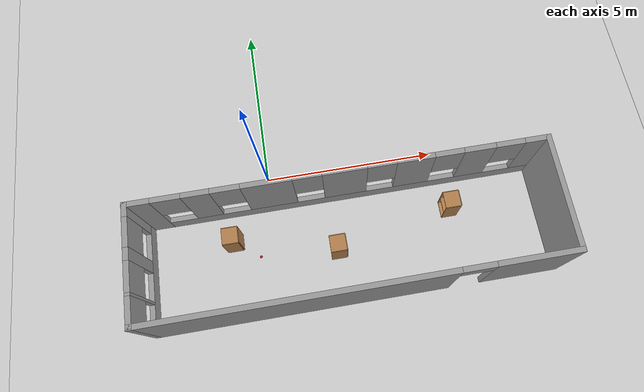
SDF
<sdf version="1.7">
 <world name="default">
  <light name="sun" type="directional">
   <pose>0 0 10 0 -0 0</pose>
   <diffuse>0.8 0.8 0.8 1</diffuse>
   <specular>0.2 0.2 0.2 1</specular>
   <attenuation>
    <range>1000</range>
    <constant>0.9</constant>
    <linear>0.01</linear>
    <quadratic>0.001</quadratic>
   </attenuation>
   <direction>-0.5 0.1 -0.9</direction>
   <spot><inner_angle>0</inner_angle><outer_angle>0</outer_angle><falloff>0</falloff></spot>
  </light>
  <model name="ground_plane">
   <static>1</static>
   <link name="link">
    <collision name="collision">
     <geometry><plane><normal>0 0 1</normal><size>100 100</size></plane></geometry>
     <surface><friction><ode><mu>100</mu><mu2>50</mu2></ode></friction></surface>
    </collision>
    <visual name="visual">
     <cast_shadows>0</cast_shadows>
     <geometry><plane><normal>0 0 1</normal><size>100 100</size></plane></geometry>
     <material>
      <script><uri>file://media/materials/scripts/gazebo.material</uri><name>Gazebo/Grey</name></script>
     </material>
    </visual>
   </link>
  </model>
  <gravity>0 0 -9.8</gravity>
  <magnetic_field>6e-06 2.3e-05 -4.2e-05</magnetic_field>
  <atmosphere type="adiabatic"/>
  <physics type="ode">
   <max_step_size>0.001</max_step_size>
   <real_time_factor>1</real_time_factor>
   <real_time_update_rate>1000</real_time_update_rate>
  </physics>
  <scene><ambient>0.4 0.4 0.4 1</ambient><background>0.7 0.7 0.7 1</background><shadows>1</shadows></scene>
  <audio><device>default</device></audio>
  <spherical_coordinates>
   <surface_model>EARTH_WGS84</surface_model>
   <latitude_deg>0</latitude_deg>
   <longitude_deg>0</longitude_deg>
   <elevation>0</elevation>
   <heading_deg>0</heading_deg>
  </spherical_coordinates>
  <model name="walls_new_room">
   <pose>2.12168 -1.73237 0 0 -0 0</pose>
   <link name="Wall_1">
    <collision name="Wall_1_Collision">
     <geometry><box><size>3.25 0.15 2.5</size></box></geometry>
     <pose>0 0 1.25 0 -0 0</pose>
    </collision>
    <visual name="Wall_1_Visual">
     <pose>0 0 1.25 0 -0 0</pose>
     <geometry><box><size>3.25 0.15 2.5</size></box></geometry>
     <material>
      <script><uri>file://media/materials/scripts/gazebo.material</uri><name>Gazebo/Grey</name></script>
      <ambient>1 1 1 1</ambient>
     </material>
     <meta><layer>0</layer></meta>
    </visual>
    <pose>5.675 -0.7375 0 0 -0 -1.5708</pose>
   </link>
   <link name="Wall_2">
    <pose>0 -2.2875 0 0 -0 3.14159</pose>
    <visual name="Wall_2_Visual_0">
     <pose>-4.6075 0 1.25 0 -0 0</pose>
     <geometry><box><size>2.285 0.15 2.5</size></box></geometry>
     <material>
      <script><uri>file://media/materials/scripts/gazebo.material</uri><name>Gazebo/Grey</name></script>
      <ambient>1 1 1 1</ambient>
     </material>
     <meta><layer>0</layer></meta>
    </visual>
    <collision name="Wall_2_Collision_0">
     <geometry><box><size>2.285 0.15 2.5</size></box></geometry>
     <pose>-4.6075 0 1.25 0 -0 0</pose>
    </collision>
    <visual name="Wall_2_Visual_1">
     <pose>1.5925 0 1.25 0 -0 0</pose>
     <geometry><box><size>8.315 0.15 2.5</size></box></geometry>
     <material>
      <script><uri>file://media/materials/scripts/gazebo.material</uri><name>Gazebo/Grey</name></script>
      <ambient>1 1 1 1</ambient>
     </material>
     <meta><layer>0</layer></meta>
    </visual>
    <collision name="Wall_2_Collision_1">
     <geometry><box><size>8.315 0.15 2.5</size></box></geometry>
     <pose>1.5925 0 1.25 0 -0 0</pose>
    </collision>
    <visual name="Wall_2_Visual_2">
     <pose>-3.015 0 2.25 0 -0 0</pose>
     <geometry><box><size>0.9 0.15 0.5</size></box></geometry>
     <material>
      <script><uri>file://media/materials/scripts/gazebo.material</uri><name>Gazebo/Grey</name></script>
      <ambient>1 1 1 1</ambient>
     </material>
     <meta><layer>0</layer></meta>
    </visual>
    <collision name="Wall_2_Collision_2">
     <geometry><box><size>0.9 0.15 0.5</size></box></geometry>
     <pose>-3.015 0 2.25 0 -0 0</pose>
    </collision>
   </link>
   <link name="Wall_3">
    <pose>-5.675 -0.7375 0 0 -0 1.5708</pose>
    <visual name="Wall_3_Visual_0">
     <pose>-1.6075 0 1.25 0 -0 0</pose>
     <geometry><box><size>0.035 0.15 2.5</size></box></geometry>
     <material>
      <script><uri>file://media/materials/scripts/gazebo.material</uri><name>Gazebo/Grey</name></script>
      <ambient>1 1 1 1</ambient>
     </material>
     <meta><layer>0</layer></meta>
    </visual>
    <collision name="Wall_3_Collision_0">
     <geometry><box><size>0.035 0.15 2.5</size></box></geometry>
     <pose>-1.6075 0 1.25 0 -0 0</pose>
    </collision>
    <visual name="Wall_3_Visual_1">
     <pose>0.0175 0 0.25 0 -0 0</pose>
     <geometry><box><size>3.215 0.15 0.5</size></box></geometry>
     <material>
      <script><uri>file://media/materials/scripts/gazebo.material</uri><name>Gazebo/Grey</name></script>
      <ambient>1 1 1 1</ambient>
     </material>
     <meta><layer>0</layer></meta>
    </visual>
    <collision name="Wall_3_Collision_1">
     <geometry><box><size>3.215 0.15 0.5</size></box></geometry>
     <pose>0.0175 0 0.25 0 -0 0</pose>
    </collision>
    <visual name="Wall_3_Visual_2">
     <pose>-0.75 0 1.5 0 -0 0</pose>
     <geometry><box><size>0.08 0.15 2</size></box></geometry>
     <material>
      <script><uri>file://media/materials/scripts/gazebo.material</uri><name>Gazebo/Grey</name></script>
      <ambient>1 1 1 1</ambient>
     </material>
     <meta><layer>0</layer></meta>
    </visual>
    <collision name="Wall_3_Collision_2">
     <geometry><box><size>0.08 0.15 2</size></box></geometry>
     <pose>-0.75 0 1.5 0 -0 0</pose>
    </collision>
    <visual name="Wall_3_Visual_3">
     <pose>0.26 0 1.5 0 -0 0</pose>
     <geometry><box><size>0.34 0.15 2</size></box></geometry>
     <material>
      <script><uri>file://media/materials/scripts/gazebo.material</uri><name>Gazebo/Grey</name></script>
      <ambient>1 1 1 1</ambient>
     </material>
     <meta><layer>0</layer></meta>
    </visual>
    <collision name="Wall_3_Collision_3">
     <geometry><box><size>0.34 0.15 2</size></box></geometry>
     <pose>0.26 0 1.5 0 -0 0</pose>
    </collision>
    <visual name="Wall_3_Visual_4">
     <pose>1.4275 0 1.5 0 -0 0</pose>
     <geometry><box><size>0.395 0.15 2</size></box></geometry>
     <material>
      <script><uri>file://media/materials/scripts/gazebo.material</uri><name>Gazebo/Grey</name></script>
      <ambient>1 1 1 1</ambient>
     </material>
     <meta><layer>0</layer></meta>
    </visual>
    <collision name="Wall_3_Collision_4">
     <geometry><box><size>0.395 0.15 2</size></box></geometry>
     <pose>1.4275 0 1.5 0 -0 0</pose>
    </collision>
    <visual name="Wall_3_Visual_5">
     <pose>-1.19 0 1.9 0 -0 0</pose>
     <geometry><box><size>0.8 0.15 1.2</size></box></geometry>
     <material>
      <script><uri>file://media/materials/scripts/gazebo.material</uri><name>Gazebo/Grey</name></script>
      <ambient>1 1 1 1</ambient>
     </material>
     <meta><layer>0</layer></meta>
    </visual>
    <collision name="Wall_3_Collision_5">
     <geometry><box><size>0.8 0.15 1.2</size></box></geometry>
     <pose>-1.19 0 1.9 0 -0 0</pose>
    </collision>
    <visual name="Wall_3_Visual_6">
     <pose>-0.31 0 1.9 0 -0 0</pose>
     <geometry><box><size>0.8 0.15 1.2</size></box></geometry>
     <material>
      <script><uri>file://media/materials/scripts/gazebo.material</uri><name>Gazebo/Grey</name></script>
      <ambient>1 1 1 1</ambient>
     </material>
     <meta><layer>0</layer></meta>
    </visual>
    <collision name="Wall_3_Collision_6">
     <geometry><box><size>0.8 0.15 1.2</size></box></geometry>
     <pose>-0.31 0 1.9 0 -0 0</pose>
    </collision>
    <visual name="Wall_3_Visual_7">
     <pose>0.83 0 1.9 0 -0 0</pose>
     <geometry><box><size>0.8 0.15 1.2</size></box></geometry>
     <material>
      <script><uri>file://media/materials/scripts/gazebo.material</uri><name>Gazebo/Grey</name></script>
      <ambient>1 1 1 1</ambient>
     </material>
     <meta><layer>0</layer></meta>
    </visual>
    <collision name="Wall_3_Collision_7">
     <geometry><box><size>0.8 0.15 1.2</size></box></geometry>
     <pose>0.83 0 1.9 0 -0 0</pose>
    </collision>
   </link>
   <link name="Wall_6">
    <pose>0 0.8125 0 0 -0 0</pose>
    <visual name="Wall_6_Visual_0">
     <pose>-5.3875 0 1.25 0 -0 0</pose>
     <geometry><box><size>0.725 0.15 2.5</size></box></geometry>
     <material>
      <script><uri>file://media/materials/scripts/gazebo.material</uri><name>Gazebo/Grey</name></script>
      <ambient>1 1 1 1</ambient>
     </material>
     <meta><layer>0</layer></meta>
    </visual>
    <collision name="Wall_6_Collision_0">
     <geometry><box><size>0.725 0.15 2.5</size></box></geometry>
     <pose>-5.3875 0 1.25 0 -0 0</pose>
    </collision>
    <visual name="Wall_6_Visual_1">
     <pose>0.3625 0 0.25 0 -0 0</pose>
     <geometry><box><size>10.775 0.15 0.5</size></box></geometry>
     <material>
      <script><uri>file://media/materials/scripts/gazebo.material</uri><name>Gazebo/Grey</name></script>
      <ambient>1 1 1 1</ambient>
     </material>
     <meta><layer>0</layer></meta>
    </visual>
    <collision name="Wall_6_Collision_1">
     <geometry><box><size>10.775 0.15 0.5</size></box></geometry>
     <pose>0.3625 0 0.25 0 -0 0</pose>
    </collision>
    <visual name="Wall_6_Visual_2">
     <pose>-3.85 0 1.5 0 -0 0</pose>
     <geometry><box><size>0.75 0.15 2</size></box></geometry>
     <material>
      <script><uri>file://media/materials/scripts/gazebo.material</uri><name>Gazebo/Grey</name></script>
      <ambient>1 1 1 1</ambient>
     </material>
     <meta><layer>0</layer></meta>
    </visual>
    <collision name="Wall_6_Collision_2">
     <geometry><box><size>0.75 0.15 2</size></box></geometry>
     <pose>-3.85 0 1.5 0 -0 0</pose>
    </collision>
    <visual name="Wall_6_Visual_3">
     <pose>-1.99 0 1.5 0 -0 0</pose>
     <geometry><box><size>1.37 0.15 2</size></box></geometry>
     <material>
      <script><uri>file://media/materials/scripts/gazebo.material</uri><name>Gazebo/Grey</name></script>
      <ambient>1 1 1 1</ambient>
     </material>
     <meta><layer>0</layer></meta>
    </visual>
    <collision name="Wall_6_Collision_3">
     <geometry><box><size>1.37 0.15 2</size></box></geometry>
     <pose>-1.99 0 1.5 0 -0 0</pose>
    </collision>
    <visual name="Wall_6_Visual_4">
     <pose>0.105 0 1.5 0 -0 0</pose>
     <geometry><box><size>1.22 0.15 2</size></box></geometry>
     <material>
      <script><uri>file://media/materials/scripts/gazebo.material</uri><name>Gazebo/Grey</name></script>
      <ambient>1 1 1 1</ambient>
     </material>
     <meta><layer>0</layer></meta>
    </visual>
    <collision name="Wall_6_Collision_4">
     <geometry><box><size>1.22 0.15 2</size></box></geometry>
     <pose>0.105 0 1.5 0 -0 0</pose>
    </collision>
    <visual name="Wall_6_Visual_5">
     <pose>2.035 0 1.5 0 -0 0</pose>
     <geometry><box><size>1.04 0.15 2</size></box></geometry>
     <material>
      <script><uri>file://media/materials/scripts/gazebo.material</uri><name>Gazebo/Grey</name></script>
      <ambient>1 1 1 1</ambient>
     </material>
     <meta><layer>0</layer></meta>
    </visual>
    <collision name="Wall_6_Collision_5">
     <geometry><box><size>1.04 0.15 2</size></box></geometry>
     <pose>2.035 0 1.5 0 -0 0</pose>
    </collision>
    <visual name="Wall_6_Visual_6">
     <pose>3.79 0 1.5 0 -0 0</pose>
     <geometry><box><size>0.87 0.15 2</size></box></geometry>
     <material>
      <script><uri>file://media/materials/scripts/gazebo.material</uri><name>Gazebo/Grey</name></script>
      <ambient>1 1 1 1</ambient>
     </material>
     <meta><layer>0</layer></meta>
    </visual>
    <collision name="Wall_6_Collision_6">
     <geometry><box><size>0.87 0.15 2</size></box></geometry>
     <pose>3.79 0 1.5 0 -0 0</pose>
    </collision>
    <visual name="Wall_6_Visual_7">
     <pose>5.3875 0 1.5 0 -0 0</pose>
     <geometry><box><size>0.725 0.15 2</size></box></geometry>
     <material>
      <script><uri>file://media/materials/scripts/gazebo.material</uri><name>Gazebo/Grey</name></script>
      <ambient>1 1 1 1</ambient>
     </material>
     <meta><layer>0</layer></meta>
    </visual>
    <collision name="Wall_6_Collision_7">
     <geometry><box><size>0.725 0.15 2</size></box></geometry>
     <pose>5.3875 0 1.5 0 -0 0</pose>
    </collision>
    <visual name="Wall_6_Visual_8">
     <pose>-4.625 0 1.9 0 -0 0</pose>
     <geometry><box><size>0.8 0.15 1.2</size></box></geometry>
     <material>
      <script><uri>file://media/materials/scripts/gazebo.material</uri><name>Gazebo/Grey</name></script>
      <ambient>1 1 1 1</ambient>
     </material>
     <meta><layer>0</layer></meta>
    </visual>
    <collision name="Wall_6_Collision_8">
     <geometry><box><size>0.8 0.15 1.2</size></box></geometry>
     <pose>-4.625 0 1.9 0 -0 0</pose>
    </collision>
    <visual name="Wall_6_Visual_9">
     <pose>-3.075 0 1.9 0 -0 0</pose>
     <geometry><box><size>0.8 0.15 1.2</size></box></geometry>
     <material>
      <script><uri>file://media/materials/scripts/gazebo.material</uri><name>Gazebo/Grey</name></script>
      <ambient>1 1 1 1</ambient>
     </material>
     <meta><layer>0</layer></meta>
    </visual>
    <collision name="Wall_6_Collision_9">
     <geometry><box><size>0.8 0.15 1.2</size></box></geometry>
     <pose>-3.075 0 1.9 0 -0 0</pose>
    </collision>
    <visual name="Wall_6_Visual_10">
     <pose>-0.905 0 1.9 0 -0 0</pose>
     <geometry><box><size>0.8 0.15 1.2</size></box></geometry>
     <material>
      <script><uri>file://media/materials/scripts/gazebo.material</uri><name>Gazebo/Grey</name></script>
      <ambient>1 1 1 1</ambient>
     </material>
     <meta><layer>0</layer></meta>
    </visual>
    <collision name="Wall_6_Collision_10">
     <geometry><box><size>0.8 0.15 1.2</size></box></geometry>
     <pose>-0.905 0 1.9 0 -0 0</pose>
    </collision>
    <visual name="Wall_6_Visual_11">
     <pose>1.115 0 1.9 0 -0 0</pose>
     <geometry><box><size>0.8 0.15 1.2</size></box></geometry>
     <material>
      <script><uri>file://media/materials/scripts/gazebo.material</uri><name>Gazebo/Grey</name></script>
      <ambient>1 1 1 1</ambient>
     </material>
     <meta><layer>0</layer></meta>
    </visual>
    <collision name="Wall_6_Collision_11">
     <geometry><box><size>0.8 0.15 1.2</size></box></geometry>
     <pose>1.115 0 1.9 0 -0 0</pose>
    </collision>
    <visual name="Wall_6_Visual_12">
     <pose>2.955 0 1.9 0 -0 0</pose>
     <geometry><box><size>0.8 0.15 1.2</size></box></geometry>
     <material>
      <script><uri>file://media/materials/scripts/gazebo.material</uri><name>Gazebo/Grey</name></script>
      <ambient>1 1 1 1</ambient>
     </material>
     <meta><layer>0</layer></meta>
    </visual>
    <collision name="Wall_6_Collision_12">
     <geometry><box><size>0.8 0.15 1.2</size></box></geometry>
     <pose>2.955 0 1.9 0 -0 0</pose>
    </collision>
    <visual name="Wall_6_Visual_13">
     <pose>4.625 0 1.9 0 -0 0</pose>
     <geometry><box><size>0.8 0.15 1.2</size></box></geometry>
     <material>
      <script><uri>file://media/materials/scripts/gazebo.material</uri><name>Gazebo/Grey</name></script>
      <ambient>1 1 1 1</ambient>
     </material>
     <meta><layer>0</layer></meta>
    </visual>
    <collision name="Wall_6_Collision_13">
     <geometry><box><size>0.8 0.15 1.2</size></box></geometry>
     <pose>4.625 0 1.9 0 -0 0</pose>
    </collision>
   </link>
   <static>1</static>
  </model>
  <model name="cabinet">
   <static>1</static>
   <link name="cabinet_bottom_plate">
    <inertial>
     <pose>0 0 -1 0 -0 0</pose>
     <inertia><ixx>2.05</ixx><ixy>0</ixy><ixz>0</ixz><iyy>2.05</iyy><iyz>0</iyz><izz>2.05</izz></inertia>
     <mass>25</mass>
    </inertial>
    <collision name="cabinet_bottom_plate_geom">
     <pose>0 0 0.01 0 -0 0</pose>
     <geometry><box><size>0.45 0.45 0.02</size></box></geometry>
    </collision>
    <visual name="cabinet_bottom_plate_geom_visual">
     <pose>0 0 0.01 0 -0 0</pose>
     <geometry><box><size>0.45 0.45 0.02</size></box></geometry>
     <material>
      <script><uri>file://media/materials/scripts/gazebo.material</uri><name>Gazebo/Wood</name></script>
     </material>
    </visual>
    <collision name="cabinet_bottom_plate_geom_cabinet_back_plate">
     <pose>0.235 0 0.51 0 -0 0</pose>
     <geometry><box><size>0.02 0.45 1.02</size></box></geometry>
    </collision>
    <visual name="cabinet_bottom_plate_geom_cabinet_back_plate_visual">
     <pose>0.235 0 0.51 0 -0 0</pose>
     <geometry><box><size>0.02 0.45 1.02</size></box></geometry>
     <material>
      <script><uri>file://media/materials/scripts/gazebo.material</uri><name>Gazebo/Wood</name></script>
     </material>
    </visual>
    <collision name="cabinet_bottom_plate_geom_cabinet_left_plate">
     <pose>0 0.235 0.51 0 -0 0</pose>
     <geometry><box><size>0.45 0.02 1.02</size></box></geometry>
    </collision>
    <visual name="cabinet_bottom_plate_geom_cabinet_left_plate_visual">
     <pose>0 0.235 0.51 0 -0 0</pose>
     <geometry><box><size>0.45 0.02 1.02</size></box></geometry>
     <material>
      <script><uri>file://media/materials/scripts/gazebo.material</uri><name>Gazebo/Wood</name></script>
     </material>
    </visual>
    <collision name="cabinet_bottom_plate_geom_cabinet_middle_plate">
     <pose>0 0 0.51 0 -0 0</pose>
     <geometry><box><size>0.45 0.45 0.02</size></box></geometry>
    </collision>
    <visual name="cabinet_bottom_plate_geom_cabinet_middle_plate_visual">
     <pose>0 0 0.51 0 -0 0</pose>
     <geometry><box><size>0.45 0.45 0.02</size></box></geometry>
     <material>
      <script><uri>file://media/materials/scripts/gazebo.material</uri><name>Gazebo/Wood</name></script>
     </material>
    </visual>
    <collision name="cabinet_bottom_plate_geom_cabinet_right_plate">
     <pose>0 -0.235 0.51 0 -0 0</pose>
     <geometry><box><size>0.45 0.02 1.02</size></box></geometry>
    </collision>
    <visual name="cabinet_bottom_plate_geom_cabinet_right_plate_visual">
     <pose>0 -0.235 0.51 0 -0 0</pose>
     <geometry><box><size>0.45 0.02 1.02</size></box></geometry>
     <material>
      <script><uri>file://media/materials/scripts/gazebo.material</uri><name>Gazebo/Wood</name></script>
     </material>
    </visual>
    <collision name="cabinet_bottom_plate_geom_cabinet_top_plate">
     <pose>0 0 1.01 0 -0 0</pose>
     <geometry><box><size>0.45 0.45 0.02</size></box></geometry>
    </collision>
    <visual name="cabinet_bottom_plate_geom_cabinet_top_plate_visual">
     <pose>0 0 1.01 0 -0 0</pose>
     <geometry><box><size>0.45 0.45 0.02</size></box></geometry>
     <material>
      <script><uri>file://media/materials/scripts/gazebo.material</uri><name>Gazebo/Wood</name></script>
     </material>
    </visual>
   </link>
   <pose>-1.18591 -1.79331 0 0 -0 0</pose>
  </model>
  <model name="cabinet_0">
   <static>1</static>
   <link name="cabinet_bottom_plate">
    <inertial>
     <pose>0 0 -1 0 -0 0</pose>
     <inertia><ixx>2.05</ixx><ixy>0</ixy><ixz>0</ixz><iyy>2.05</iyy><iyz>0</iyz><izz>2.05</izz></inertia>
     <mass>25</mass>
    </inertial>
    <collision name="cabinet_bottom_plate_geom">
     <pose>0 0 0.01 0 -0 0</pose>
     <geometry><box><size>0.45 0.45 0.02</size></box></geometry>
    </collision>
    <visual name="cabinet_bottom_plate_geom_visual">
     <pose>0 0 0.01 0 -0 0</pose>
     <geometry><box><size>0.45 0.45 0.02</size></box></geometry>
     <material>
      <script><uri>file://media/materials/scripts/gazebo.material</uri><name>Gazebo/Wood</name></script>
     </material>
    </visual>
    <collision name="cabinet_bottom_plate_geom_cabinet_back_plate">
     <pose>0.235 0 0.51 0 -0 0</pose>
     <geometry><box><size>0.02 0.45 1.02</size></box></geometry>
    </collision>
    <visual name="cabinet_bottom_plate_geom_cabinet_back_plate_visual">
     <pose>0.235 0 0.51 0 -0 0</pose>
     <geometry><box><size>0.02 0.45 1.02</size></box></geometry>
     <material>
      <script><uri>file://media/materials/scripts/gazebo.material</uri><name>Gazebo/Wood</name></script>
     </material>
    </visual>
    <collision name="cabinet_bottom_plate_geom_cabinet_left_plate">
     <pose>0 0.235 0.51 0 -0 0</pose>
     <geometry><box><size>0.45 0.02 1.02</size></box></geometry>
    </collision>
    <visual name="cabinet_bottom_plate_geom_cabinet_left_plate_visual">
     <pose>0 0.235 0.51 0 -0 0</pose>
     <geometry><box><size>0.45 0.02 1.02</size></box></geometry>
     <material>
      <script><uri>file://media/materials/scripts/gazebo.material</uri><name>Gazebo/Wood</name></script>
     </material>
    </visual>
    <collision name="cabinet_bottom_plate_geom_cabinet_middle_plate">
     <pose>0 0 0.51 0 -0 0</pose>
     <geometry><box><size>0.45 0.45 0.02</size></box></geometry>
    </collision>
    <visual name="cabinet_bottom_plate_geom_cabinet_middle_plate_visual">
     <pose>0 0 0.51 0 -0 0</pose>
     <geometry><box><size>0.45 0.45 0.02</size></box></geometry>
     <material>
      <script><uri>file://media/materials/scripts/gazebo.material</uri><name>Gazebo/Wood</name></script>
     </material>
    </visual>
    <collision name="cabinet_bottom_plate_geom_cabinet_right_plate">
     <pose>0 -0.235 0.51 0 -0 0</pose>
     <geometry><box><size>0.45 0.02 1.02</size></box></geometry>
    </collision>
    <visual name="cabinet_bottom_plate_geom_cabinet_right_plate_visual">
     <pose>0 -0.235 0.51 0 -0 0</pose>
     <geometry><box><size>0.45 0.02 1.02</size></box></geometry>
     <material>
      <script><uri>file://media/materials/scripts/gazebo.material</uri><name>Gazebo/Wood</name></script>
     </material>
    </visual>
    <collision name="cabinet_bottom_plate_geom_cabinet_top_plate">
     <pose>0 0 1.01 0 -0 0</pose>
     <geometry><box><size>0.45 0.45 0.02</size></box></geometry>
    </collision>
    <visual name="cabinet_bottom_plate_geom_cabinet_top_plate_visual">
     <pose>0 0 1.01 0 -0 0</pose>
     <geometry><box><size>0.45 0.45 0.02</size></box></geometry>
     <material>
      <script><uri>file://media/materials/scripts/gazebo.material</uri><name>Gazebo/Wood</name></script>
     </material>
    </visual>
   </link>
   <pose>5.16984 -1.79729 0 0 -0 0</pose>
  </model>
  <model name="cabinet_1">
   <static>1</static>
   <link name="cabinet_bottom_plate">
    <inertial>
     <pose>0 0 -1 0 -0 0</pose>
     <inertia><ixx>2.05</ixx><ixy>0</ixy><ixz>0</ixz><iyy>2.05</iyy><iyz>0</iyz><izz>2.05</izz></inertia>
     <mass>25</mass>
    </inertial>
    <collision name="cabinet_bottom_plate_geom">
     <pose>0 0 0.01 0 -0 0</pose>
     <geometry><box><size>0.45 0.45 0.02</size></box></geometry>
    </collision>
    <visual name="cabinet_bottom_plate_geom_visual">
     <pose>0 0 0.01 0 -0 0</pose>
     <geometry><box><size>0.45 0.45 0.02</size></box></geometry>
     <material>
      <script><uri>file://media/materials/scripts/gazebo.material</uri><name>Gazebo/Wood</name></script>
     </material>
    </visual>
    <collision name="cabinet_bottom_plate_geom_cabinet_back_plate">
     <pose>0.235 0 0.51 0 -0 0</pose>
     <geometry><box><size>0.02 0.45 1.02</size></box></geometry>
    </collision>
    <visual name="cabinet_bottom_plate_geom_cabinet_back_plate_visual">
     <pose>0.235 0 0.51 0 -0 0</pose>
     <geometry><box><size>0.02 0.45 1.02</size></box></geometry>
     <material>
      <script><uri>file://media/materials/scripts/gazebo.material</uri><name>Gazebo/Wood</name></script>
     </material>
    </visual>
    <collision name="cabinet_bottom_plate_geom_cabinet_left_plate">
     <pose>0 0.235 0.51 0 -0 0</pose>
     <geometry><box><size>0.45 0.02 1.02</size></box></geometry>
    </collision>
    <visual name="cabinet_bottom_plate_geom_cabinet_left_plate_visual">
     <pose>0 0.235 0.51 0 -0 0</pose>
     <geometry><box><size>0.45 0.02 1.02</size></box></geometry>
     <material>
      <script><uri>file://media/materials/scripts/gazebo.material</uri><name>Gazebo/Wood</name></script>
     </material>
    </visual>
    <collision name="cabinet_bottom_plate_geom_cabinet_middle_plate">
     <pose>0 0 0.51 0 -0 0</pose>
     <geometry><box><size>0.45 0.45 0.02</size></box></geometry>
    </collision>
    <visual name="cabinet_bottom_plate_geom_cabinet_middle_plate_visual">
     <pose>0 0 0.51 0 -0 0</pose>
     <geometry><box><size>0.45 0.45 0.02</size></box></geometry>
     <material>
      <script><uri>file://media/materials/scripts/gazebo.material</uri><name>Gazebo/Wood</name></script>
     </material>
    </visual>
    <collision name="cabinet_bottom_plate_geom_cabinet_right_plate">
     <pose>0 -0.235 0.51 0 -0 0</pose>
     <geometry><box><size>0.45 0.02 1.02</size></box></geometry>
    </collision>
    <visual name="cabinet_bottom_plate_geom_cabinet_right_plate_visual">
     <pose>0 -0.235 0.51 0 -0 0</pose>
     <geometry><box><size>0.45 0.02 1.02</size></box></geometry>
     <material>
      <script><uri>file://media/materials/scripts/gazebo.material</uri><name>Gazebo/Wood</name></script>
     </material>
    </visual>
    <collision name="cabinet_bottom_plate_geom_cabinet_top_plate">
     <pose>0 0 1.01 0 -0 0</pose>
     <geometry><box><size>0.45 0.45 0.02</size></box></geometry>
    </collision>
    <visual name="cabinet_bottom_plate_geom_cabinet_top_plate_visual">
     <pose>0 0 1.01 0 -0 0</pose>
     <geometry><box><size>0.45 0.45 0.02</size></box></geometry>
     <material>
      <script><uri>file://media/materials/scripts/gazebo.material</uri><name>Gazebo/Wood</name></script>
     </material>
    </visual>
   </link>
   <pose>1.76505 -2.49923 0 0 -0 0</pose>
  </model>
  <model name="cricket_ball">
   <link name="link">
    <pose>0 0 0.0375 0 -0 0</pose>
    <inertial>
     <mass>0.1467</mass>
     <inertia>
      <ixx>8.25187e-05</ixx>
      <ixy>0</ixy>
      <ixz>0</ixz>
      <iyy>8.25187e-05</iyy>
      <iyz>0</iyz>
      <izz>8.25187e-05</izz>
     </inertia>
    </inertial>
    <collision name="collision">
     <geometry><sphere><radius>0.0375</radius></sphere></geometry>
     <surface>
      <contact>
       <poissons_ratio>0.347</poissons_ratio>
       <elastic_modulus>8.8e+09</elastic_modulus>
       <ode><kp>100000</kp><kd>100</kd><max_vel>100</max_vel><min_depth>0.001</min_depth></ode>
      </contact>
      <friction>
       <torsional>
        <coefficient>1</coefficient>
        <use_patch_radius>0</use_patch_radius>
        <surface_radius>0.01</surface_radius>
       </torsional>
      </friction>
     </surface>
    </collision>
    <visual name="visual">
     <geometry><sphere><radius>0.0375</radius></sphere></geometry>
     <material>
      <script><uri>file://media/materials/scripts/gazebo.material</uri><name>Gazebo/Red</name></script>
     </material>
    </visual>
    <velocity_decay><linear>0</linear><angular>0.005</angular></velocity_decay>
   </link>
   <pose>-0.486487 -2.32049 -0.001014 0 -0 0</pose>
  </model>
 </world>
</sdf>
